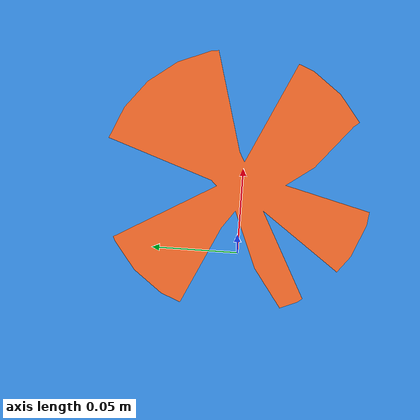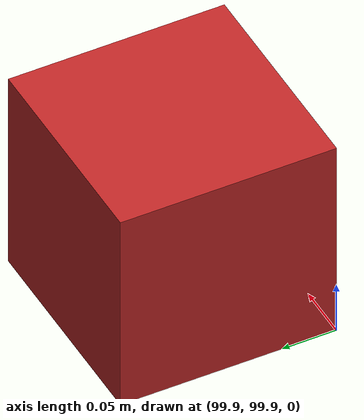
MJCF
<mujoco model="cudarobotics_contact_box_push">
  <compiler angle="radian"/>
  <option timestep="0.005" integrator="implicitfast" iterations="100"
          cone="elliptic" gravity="0 0 -9.81"/>
  <default>
    <joint damping="0.15"/>
    <geom condim="4" friction="0.6 0.01 0.001"
          solref="0.008 1" solimp="0.95 0.99 0.001"/>
  </default>
  <worldbody>
    <geom name="floor" type="plane" size="8 8 0.1"
          friction="0.8 0.01 0.001" rgba="0.25 0.25 0.25 1"/>
    <body name="box" pos="0 0 0.10">
      <joint name="box_x" type="slide" axis="1 0 0"/>
      <joint name="box_y" type="slide" axis="0 1 0"/>
      <joint name="box_yaw" type="hinge" axis="0 0 1"/>
      <geom name="box_geom" type="box" size="0.35 0.18 0.10"
            mass="1.0" rgba="0.2 0.55 0.9 1"/>
    </body>
    <body name="pusher" pos="0 0 0.10">
      <joint name="pusher_x" type="slide" axis="1 0 0" damping="0.05"/>
      <joint name="pusher_y" type="slide" axis="0 1 0" damping="0.05"/>
      <geom name="pusher_geom" type="cylinder" size="0.08 0.10"
            mass="0.25" rgba="0.95 0.4 0.15 1"/>
    </body>
    <body name="obstacle" pos="100 100 0.10">
      <geom name="obstacle_geom" type="box" size="0.1 0.1 0.10"
            friction="0.8 0.01 0.001" rgba="0.75 0.15 0.15 1"/>
    </body>
  </worldbody>
  <actuator>
    <velocity name="pusher_x_velocity" joint="pusher_x"
              kv="80" ctrlrange="-2 2" ctrllimited="true"/>
    <velocity name="pusher_y_velocity" joint="pusher_y"
              kv="80" ctrlrange="-2 2" ctrllimited="true"/>
  </actuator>
</mujoco>
